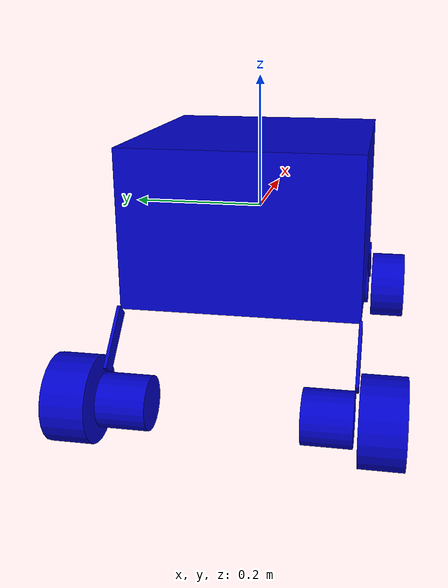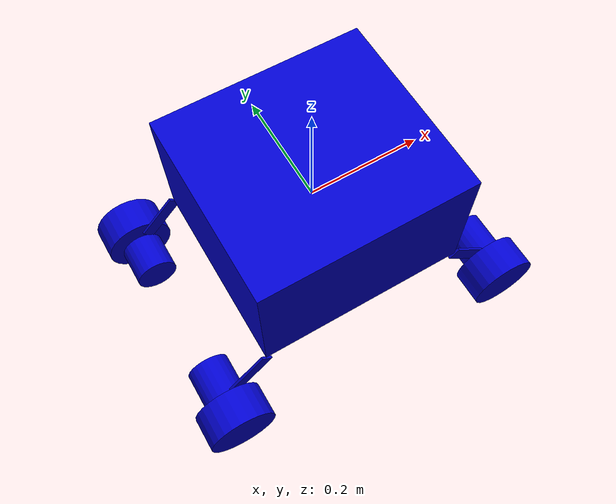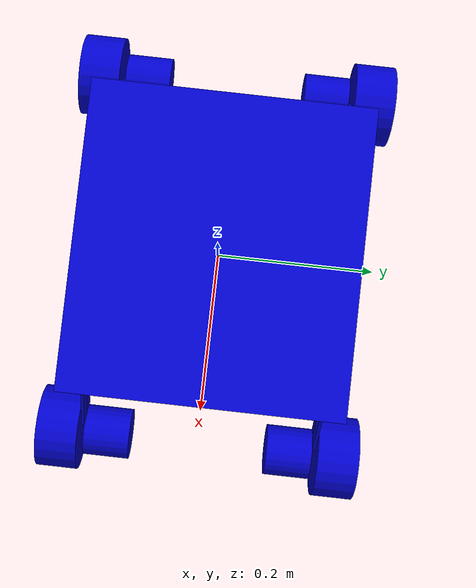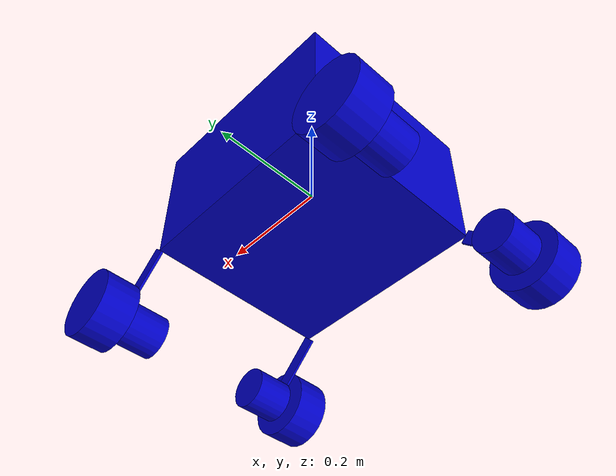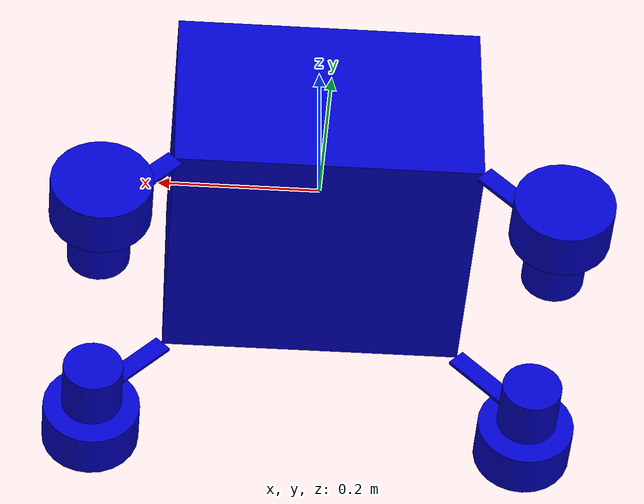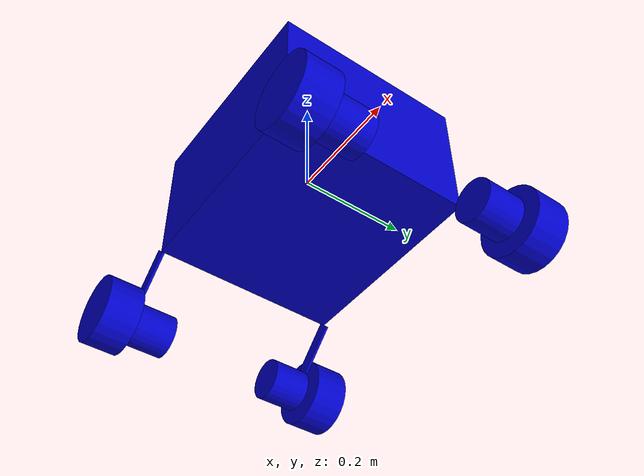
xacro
<?xml version="1.0" ?>
<robot xmlns:xacro="http://ros.org/wiki/xacro" name="r2d2">

    <!--Defining colours to be used in this rover links for primitives-->
    <material name="Black">
        <color rgba="0.0 0.0 0.0 1.0"/>
    </material>

    <material name="Red">
        <color rgba="0.8 0.0 0.0 1.0"/>
    </material>

    <material name="White">
        <color rgba="1.0 1.0 1.0 1.0"/>
    </material>

    <material name="Blue">
        <color rgba="0.0 0.0 0.8 1.0"/>
    </material>

  <!--Property List-->
  <!--All units in m-kg-s-radians unit system please remember this while developing the inertia matrix and the body dimensions-->

  <!--Constant Values-->
  <xacro:property name="M_PI" value="3.1415926535897931"/>
  <xacro:property name="DEG_TO_RAD" value="0.017453293"/>

  <!-- Main Body Cuboid which is made of black color aluminum dimensions -->
  <xacro:property name="box_length" value="0.37"/>
  <xacro:property name="box_width" value="0.34"/>
  <xacro:property name="box_height" value="0.23"/>
  <xacro:property name="box_mass" value="5"/> <!-- This value is in Kg's -->

  <!-- Cuboid part of the holder which is red color steel connecting the wheels, motors to main body -->
  <xacro:property name="holder_length" value="0.0928"/>
  <xacro:property name="holder_width" value="0.02404"/>
  <xacro:property name="holder_height" value="0.00452"/>
  <xacro:property name="holder_mass" value="0.2"/> <!-- This value is in Kg's -->

  <!-- Wheels (off road) -->

  <xacro:property name="wheel_mass" value="0.05" /> --> <!-- in kg-->
  <xacro:property name="wheel_radius" value="0.06"/>
  <xacro:property name="wheel_height" value="0.06"/>

  <!-- Motor Dimensions with holder2 added to it -->

  <xacro:property name="motor_mass" value="0.2" /> --> <!-- in kg-->
  <xacro:property name="motor_radius" value="0.037"/>
  <xacro:property name="motor_height" value="0.067"/>

  <!-- #################### versions with origin #################### -->
  <xacro:macro name="sphere_inertial_with_origin" params="radius mass x_o y_o z_o r_o p_o yr_o">
    <inertial>
      <mass value="${mass}" />
      <origin rpy="${r_o} ${p_o} ${yr_o}" xyz="${x_o} ${y_o} ${z_o}" />
      <inertia ixx="${0.4 * mass * radius * radius}" ixy="0.0" ixz="0.0"
        iyy="${0.4 * mass * radius * radius}" iyz="0.0"
        izz="${0.4 * mass * radius * radius}" />
    </inertial>
  </xacro:macro>

  <xacro:macro name="cylinder_inertial_with_origin" params="radius length mass x_o y_o z_o r_o p_o yr_o">
    <inertial>
      <mass value="${mass}" />
      <origin rpy="${r_o} ${p_o} ${yr_o}" xyz="${x_o} ${y_o} ${z_o}" />
      <inertia ixx="${0.0833333 * mass * (3 * radius * radius + length * length)}" ixy="0.0" ixz="0.0"
        iyy="${0.0833333 * mass * (3 * radius * radius + length * length)}" iyz="0.0"
        izz="${0.5 * mass * radius * radius}" />
    </inertial>
  </xacro:macro>

  <xacro:macro name="box_inertial_with_origin" params="x y z mass x_o y_o z_o r_o p_o yr_o">
    <inertial>
      <mass value="${mass}" />
      <origin rpy="${r_o} ${p_o} ${yr_o}" xyz="${x_o} ${y_o} ${z_o}" />
      <inertia ixx="${0.0833333 * mass * (y*y + z*z)}" ixy="0.0" ixz="0.0"
        iyy="${0.0833333 * mass * (x*x + z*z)}" iyz="0.0"
        izz="${0.0833333 * mass * (x*x + y*y)}" />
    </inertial>
  </xacro:macro>

  <!--Base Link-->
  <link name="base_link">

        <!--Visual of the Link-->
        <visual>
            <!-- Setting up the origin of the link -->
            <origin rpy="0 0 0" xyz="0 0 0"/>

            <!-- Giving geometry to the link -->
            <geometry>
                <box size=" ${box_length} ${box_width} ${box_height}"/>
            </geometry>

            <!--Giving the material to be used in rviz-->
             <material name="Blue"/>
        </visual>

        <!-- Collision Model of the link -->
        <collision>
            <!-- Origin of the collision model -->
            <!-- Setting up the origin of the link -->
            <origin rpy="0 0 0" xyz="0 0 0"/>

            <!-- Giving geometry to the collision model of the link -->
            <geometry>
                <box size="${box_length} ${box_width} ${box_height}"/>
            </geometry>
        </collision>

        <!-- Inertia of the base_link -->
        <xacro:box_inertial_with_origin x="${box_length}" y="${box_width}" z="${box_height}" mass="5" x_o="0" y_o="0" z_o="0" r_o="0" p_o="0" yr_o="0"/>
  </link>

  <joint name="RR_holder_to_base_link" type="revolute">
      <parent link="base_link"/>
      <child link="rr_holder"/>
      <origin xyz="-0.175 -0.17 -0.125" rpy="0 0 0"/>
      <axis xyz="0 1 0" />
      <limit effort="300" velocity="0.1" lower="0" upper="0.261799" />
  </joint>

   <!--Right Rear holder Link-->
  <link name="rr_holder">

        <!--Visual of the Link-->
        <visual>
            <!-- Setting up the origin of the link -->
            <origin rpy="1.5708 -0.785398 0" xyz="-0.0415 0 -0.024"/>

            <!-- Giving geometry to the link -->
            <geometry>
                <box size="${holder_length} ${holder_width} ${holder_height} "/>
            </geometry>

            <!--Giving the material to be used in rviz-->
             <material name="Blue"/>
        </visual>

        <!-- Collision Model of the link -->
        <collision>
            <!-- Origin of the collision model -->
            <!-- Setting up the origin of the link -->
            <origin rpy="1.5708 -0.785398 0" xyz="-0.0415 0 -0.024"/>

            <!-- Giving geometry to the collision model of the link -->
            <geometry>
                <box size="${holder_length} ${holder_width} ${holder_height }"/>
            </geometry>
        </collision>

        <!-- Inertia of the base_link -->
        <xacro:box_inertial_with_origin x="${holder_length}" y="${holder_width}" z="${holder_height}" mass="0.2" x_o="-0.039" y_o="0" z_o="0" r_o="1.5708" p_o="0" yr_o="0"/>
  </link>

  <joint name="RF_holder_to_base_link" type="revolute">
      <parent link="base_link"/>
      <child link="rf_holder"/>
      <origin xyz="0.175 -0.17 -0.125" rpy="0 0 0"/>
      <axis xyz="0 1 0" />
      <limit effort="300" velocity="0.1" lower="0" upper="-0.261799" />
  </joint>

   <!--Right Forward holder Link-->
  <link name="rf_holder">

        <!--Visual of the Link-->
        <visual>
            <!-- Setting up the origin of the link -->
            <origin rpy="1.5708 0.785398 0" xyz="0.0415 0 -0.024"/>

            <!-- Giving geometry to the link -->
            <geometry>
                <box size="${holder_length} ${holder_width} ${holder_height}"/>
            </geometry>

            <!--Giving the material to be used in rviz-->
             <material name="Blue"/>
        </visual>

        <!-- Collision Model of the link -->
        <collision>
            <!-- Origin of the collision model -->
            <!-- Setting up the origin of the link -->
            <origin rpy="1.5708 0.785398 0" xyz="0.0415 0 -0.024"/>

            <!-- Giving geometry to the collision model of the link -->
            <geometry>
                <box size="${holder_length} ${holder_width} ${holder_height}"/>
            </geometry>
        </collision>

        <!-- Inertia of the base_link -->
        <xacro:box_inertial_with_origin x="${holder_length}" y="${holder_width}" z="${holder_height}" mass="0.2" x_o="0.039" y_o="0" z_o="0" r_o="1.5708" p_o="0" yr_o="0"/>
  </link>

  <joint name="LR_holder_to_base_link" type="revolute">
      <parent link="base_link"/>
      <child link="lr_holder"/>
      <origin xyz="-0.175 0.17 -0.125" rpy="0 0 0"/>
      <axis xyz="0 1 0" />
      <limit effort="300" velocity="0.1" lower="0" upper="0.261799" />
  </joint>

   <!--Right Rear holder Link-->
  <link name="lr_holder">

        <!--Visual of the Link-->
        <visual>
            <!-- Setting up the origin of the link -->
            <origin rpy="1.5708 -0.785398 0" xyz="-0.0415 0 -0.024"/>

            <!-- Giving geometry to the link -->
            <geometry>
                <box size="${holder_length} ${holder_width} ${holder_height} "/>
            </geometry>

            <!--Giving the material to be used in rviz-->
             <material name="Blue"/>
        </visual>0.785398

        <!-- Collision Model of the link -->
        <collision>
            <!-- Origin of the collision model -->
            <!-- Setting up the origin of the link -->
            <origin rpy="1.5708 -0.785398 0" xyz="-0.0415 0 -0.024"/>

            <!-- Giving geometry to the collision model of the link -->
            <geometry>
                <box size="${holder_length} ${holder_width} ${holder_height}"/>
            </geometry>
        </collision>

        <!-- Inertia of the base_link -->
        <xacro:box_inertial_with_origin x="${holder_length}" y="${holder_width}" z="${holder_height}" mass="0.2" x_o="-0.039" y_o="0" z_o="0" r_o="1.5708" p_o="0" yr_o="0"/>
  </link>

  <joint name="LF_holder_to_base_link" type="revolute">
      <parent link="base_link"/>
      <child link="lf_holder"/>
      <origin xyz="0.175 0.17 -0.125" rpy="0 0 0"/>
      <axis xyz="0 1 0" />
      <limit effort="300" velocity="0.1" lower="0" upper="-0.261799" />
  </joint>

   <!--Left Forward holder Link-->
  <link name="lf_holder">

        <!--Visual of the Link-->
        <visual>
            <!-- Setting up the origin of the link -->
            <origin rpy="1.5708 0.785398 0" xyz="0.0415 0 -0.024"/>

            <!-- Giving geometry to the link -->
            <geometry>
                <box size="${holder_length} ${holder_width} ${holder_height}"/>
            </geometry>

            <!--Giving the material to be used in rviz-->
             <material name="Blue"/>
        </visual>

        <!-- Collision Model of the link -->
        <collision>
            <!-- Origin of the collision model -->
            <!-- Setting up the origin of the link -->
            <origin rpy="1.5708 0.785398 0" xyz="0.0415 0 -0.024"/>

            <!-- Giving geometry to the collision model of the link -->
            <geometry>
                <box size="${holder_length} ${holder_width} ${holder_height}"/>
            </geometry>
        </collision>

        <!-- Inertia of the base_link -->
        <xacro:box_inertial_with_origin x="${holder_length}" y="${holder_width}" z="${holder_height}" mass="0.2" x_o="0.039" y_o="0" z_o="0" r_o="1.5708" p_o="0" yr_o="0"/>
  </link>

  <!-- Joint link between
      Parent Link :- rr_holder
      Child Link :- motor_rr

      This joint would be a fixed joint.
   -->
  <joint name="RR_motor_to_holder_link" type="fixed">
      <parent link="rr_holder"/>
      <child link="motor_rr"/>
      <origin xyz="-0.062 0 -0.062" rpy="0 0 0"/>
  </joint>

   <!--Left Forward motor + holder2  Link-->
  <link name="motor_rr">

        <!--Visual of the Link-->
        <visual>
            <!-- Setting up the origin of the link -->
            <origin rpy="1.5708 0 0" xyz="${-motor_radius + 0.005} 0.035 ${-motor_radius + 0.01}"/>

            <!-- Giving geometry to the link -->
            <geometry>
                <cylinder length="${motor_height}" radius="${motor_radius}"/>
            </geometry>

            <!--Giving the material to be used in rviz-->
             <material name="Blue"/>
        </visual>

        <!-- Collision Model of the link -->
        <collision>
            <!-- Origin of the collision model -->
            <!-- Setting up the origin of the link -->
            <origin rpy="1.5708 0 0" xyz="${-motor_radius + 0.005} 0.035 ${-motor_radius + 0.01}"/>

            <!-- Giving geometry to the collision model of the link -->
            <geometry>
                <cylinder length="${motor_height}" radius="${motor_radius}"/>
            </geometry>
        </collision>

        <!-- Inertia of the base_link -->
        <xacro:cylinder_inertial_with_origin radius="${motor_radius}" length="${motor_height}" mass="${motor_mass}" x_o="0" y_o="0" z_o="0" r_o="0" p_o="0" yr_o="0" />
  </link>

<!-- Joint link between
      Parent Link :- rf_holder
      Child Link :- motor_rf

      This joint would be a fixed joint.
   -->
  <joint name="RF_motor_to_holder_link" type="fixed">
      <parent link="rf_holder"/>
      <child link="motor_rf"/>
      <origin xyz="0.062 0 -0.062" rpy="0 0 0"/>
  </joint>

   <!--Right Forward motor + holder2  Link-->
  <link name="motor_rf">

        <!--Visual of the Link-->
        <visual>
            <!-- Setting up the origin of the link -->
            <origin rpy="1.5708 0 0" xyz="${motor_radius - 0.005} 0.035 ${-motor_radius + 0.01}"/>

            <!-- Giving geometry to the link -->
            <geometry>
                <cylinder length="${motor_height}" radius="${motor_radius}"/>
            </geometry>

            <!--Giving the material to be used in rviz-->
             <material name="Blue"/>
        </visual>

        <!-- Collision Model of the link -->
        <collision>
            <!-- Origin of the collision model -->
            <!-- Setting up the origin of the link -->
            <origin rpy="1.5708 0 0" xyz="${motor_radius - 0.005} 0.035 ${-motor_radius + 0.01}"/>

            <!-- Giving geometry to the collision model of the link -->
            <geometry>
                <cylinder length="${motor_height}" radius="${motor_radius}"/>
            </geometry>
        </collision>

        <!-- Inertia of the base_link -->
        <xacro:cylinder_inertial_with_origin radius="${motor_radius}" length="${motor_height}" mass="${motor_mass}" x_o="0" y_o="0" z_o="0" r_o="0" p_o="0" yr_o="0" />
  </link>

  <!-- Joint link between
      Parent Link :- lr_holder
      Child Link :- motor_lf

      This joint would be a fixed joint.
   -->
  <joint name="LR_motor_to_holder_link" type="fixed">
      <parent link="lr_holder"/>
      <child link="motor_lr"/>
      <origin xyz="-0.062 0 -0.062" rpy="0 0 0"/>
  </joint>

   <!--Left Forward motor + holder2  Link-->
  <link name="motor_lr">

        <!--Visual of the Link-->
        <visual>
            <!-- Setting up the origin of the link -->
            <origin rpy="-1.5708 0 0" xyz="${-motor_radius + 0.005} -0.035 ${-motor_radius + 0.01}"/>

            <!-- Giving geometry to the link -->
            <geometry>
                <cylinder length="${motor_height}" radius="${motor_radius}"/>
            </geometry>

            <!--Giving the material to be used in rviz-->
             <material name="Blue"/>
        </visual>

        <!-- Collision Model of the link -->
        <collision>
            <!-- Origin of the collision model -->
            <!-- Setting up the origin of the link -->
            <origin rpy="-1.5708 0 0" xyz="${-motor_radius + 0.005} -0.035 ${-motor_radius + 0.01}"/>

            <!-- Giving geometry to the collision model of the link -->
            <geometry>
                <cylinder length="${motor_height}" radius="${motor_radius}"/>
            </geometry>
        </collision>

        <!-- Inertia of the base_link -->
        <xacro:cylinder_inertial_with_origin radius="${motor_radius}" length="${motor_height}" mass="${motor_mass}" x_o="0" y_o="0" z_o="0" r_o="0" p_o="0" yr_o="0" />
  </link>

 <!-- Joint link between
      Parent Link :- lf_holder
      Child Link :- motor_lf

      This joint would be a fixed joint.
   -->
  <joint name="LF_motor_to_holder_link" type="fixed">
      <parent link="lf_holder"/>
      <child link="motor_lf"/>
      <origin xyz="0.062 0 -0.062" rpy="0 0 0"/>
  </joint>

   <!--Left Forward motor + holder2  Link-->
  <link name="motor_lf">

        <!--Visual of the Link-->
        <visual>
            <!-- Setting up the origin of the link -->
            <origin rpy="-1.5708 0 0" xyz="${motor_radius - 0.005} -0.035 ${-motor_radius + 0.01}"/>

            <!-- Giving geometry to the link -->
            <geometry>
                <cylinder length="${motor_height}" radius="${motor_radius}"/>
            </geometry>

            <!--Giving the material to be used in rviz-->
             <material name="Blue"/>
        </visual>

        <!-- Collision Model of the link -->
        <collision>
            <!-- Origin of the collision model -->
            <!-- Setting up the origin of the link -->
            <origin rpy="-1.5708 0 0" xyz="${motor_radius - 0.005} -0.035 ${-motor_radius + 0.01}"/>

            <!-- Giving geometry to the collision model of the link -->
            <geometry>
                <cylinder length="${motor_height}" radius="${motor_radius}"/>
            </geometry>
        </collision>

        <!-- Inertia of the base_link -->
        <xacro:cylinder_inertial_with_origin radius="${motor_radius}" length="${motor_height}" mass="${motor_mass}" x_o="0" y_o="0" z_o="0" r_o="0" p_o="0" yr_o="0" />
  </link>

<!-- Joint link between
      Parent Link :- motor_rr
      Child Link :- rr_wheel

      This joint would be a continuous joint.
   -->

  <joint name="RR_motor_to_wheel" type="continuous">
      <parent link="motor_rr"/>
      <child link="rr_wheel"/>
      <origin xyz="${-motor_radius + 0.005} ${-(wheel_height/2) - 0.005} ${-motor_radius + 0.01}" rpy="1.5708 0 0"/>
      <axis xyz="0 0 1" />
      <limit effort="100" velocity="100"/>
      <joint_properties damping="0.0" friction="0.0"/>
  </joint>

  <!--Left Forward motor + holder2  Link-->
  <link name="rr_wheel">

        <!--Visual of the Link-->
        <visual>
            <!-- Setting up the origin of the link -->
            <origin rpy="0 0 0" xyz="0 0 0"/>

            <!-- Giving geometry to the link -->
            <geometry>
                <cylinder length="${wheel_height}" radius="${wheel_radius}"/>
            </geometry>

            <!--Giving the material to be used in rviz-->
             <material name="Blue"/>
        </visual>

        <!-- Collision Model of the link -->
        <collision>
            <!-- Origin of the collision model -->
            <!-- Setting up the origin of the link -->
            <origin rpy="0 0 0" xyz="0 0 0"/>

            <!-- Giving geometry to the collision model of the link -->
            <geometry>
                <cylinder length="${wheel_height}" radius="${wheel_radius}"/>
            </geometry>
        </collision>

        <!-- Inertia of the base_link -->
        <xacro:cylinder_inertial_with_origin radius="${wheel_radius}" length="${wheel_height}" mass="${wheel_mass}" x_o="0" y_o="0" z_o="0" r_o="0" p_o="0" yr_o="0" />
  </link>

  <!-- Joint link between
      Parent Link :- motor_rf
      Child Link :- rf_wheel

      This joint would be a continuous joint.
   -->

  <joint name="RF_motor_to_wheel" type="continuous">
      <parent link="motor_rf"/>
      <child link="rf_wheel"/>
      <origin xyz="${motor_radius - 0.005} ${-(wheel_height/2) - 0.005} ${-motor_radius + 0.01}" rpy="1.5708 0 0"/>
      <axis xyz="0 0 1" />
      <limit effort="100" velocity="100"/>
      <joint_properties damping="0.0" friction="0.0"/>
  </joint>

  <!--Left Forward motor + holder2  Link-->
  <link name="rf_wheel">

        <!--Visual of the Link-->
        <visual>
            <!-- Setting up the origin of the link -->
            <origin rpy="0 0 0" xyz="0 0 0"/>

            <!-- Giving geometry to the link -->
            <geometry>
                <cylinder length="${wheel_height}" radius="${wheel_radius}"/>
            </geometry>

            <!--Giving the material to be used in rviz-->
             <material name="Blue"/>
        </visual>

        <!-- Collision Model of the link -->
        <collision>
            <!-- Origin of the collision model -->
            <!-- Setting up the origin of the link -->
           <origin rpy="0 0 0" xyz="0 0 0"/>

            <!-- Giving geometry to the collision model of the link -->
            <geometry>
                <cylinder length="${wheel_height}" radius="${wheel_radius}"/>
            </geometry>
        </collision>

        <!-- Inertia of the base_link -->
        <xacro:cylinder_inertial_with_origin radius="${wheel_radius}" length="${wheel_height}" mass="${wheel_mass}" x_o="0" y_o="0" z_o="0" r_o="0" p_o="0" yr_o="0" />
  </link>

   <!-- Joint link between
      Parent Link :- motor_lr
      Child Link :- lr_wheel

      This joint would be a continuous joint.
   -->

  <joint name="LR_motor_to_wheel" type="continuous">
      <parent link="motor_lr"/>
      <child link="lr_wheel"/>
      <origin xyz="${-motor_radius + 0.005} ${(wheel_height/2) + 0.005} ${-motor_radius + 0.01}" rpy="-1.5708 0 0"/>
      <axis xyz="0 0 1" />
      <limit effort="100" velocity="100"/>
      <joint_properties damping="0.0" friction="0.0"/>
  </joint>

  <!--Left Forward motor + holder2  Link-->
  <link name="lr_wheel">

        <!--Visual of the Link-->
        <visual>
            <!-- Setting up the origin of the link -->
            <origin rpy="0 0 0" xyz="0 0 0"/>

            <!-- Giving geometry to the link -->
            <geometry>
                <cylinder length="${wheel_height}" radius="${wheel_radius}"/>
            </geometry>

            <!--Giving the material to be used in rviz-->
             <material name="Blue"/>
        </visual>

        <!-- Collision Model of the link -->
        <collision>
            <!-- Origin of the collision model -->
            <!-- Setting up the origin of the link -->
            <origin rpy="0 0 0" xyz="0 0 0"/>

            <!-- Giving geometry to the collision model of the link -->
            <geometry>
                <cylinder length="${wheel_height}" radius="${wheel_radius}"/>
            </geometry>
        </collision>

        <!-- Inertia of the base_link -->
        <xacro:cylinder_inertial_with_origin radius="${wheel_radius}" length="${wheel_height}" mass="${wheel_mass}" x_o="0" y_o="0" z_o="0" r_o="0" p_o="0" yr_o="0" />
  </link>

<!-- Joint link between
      Parent Link :- motor_lf
      Child Link :- lf_wheel

      This joint would be a continuous joint.
   -->

  <joint name="LF_motor_to_wheel" type="continuous">
      <parent link="motor_lf"/>
      <child link="lf_wheel"/>
      <origin xyz="${motor_radius - 0.005} ${(wheel_height/2) + 0.005} ${-motor_radius + 0.01}" rpy="-1.5708 0 0"/>
      <axis xyz="0 0 1" />
      <limit effort="100" velocity="100"/>
      <joint_properties damping="0.0" friction="0.0"/>
  </joint>

  <!--Left Forward motor + holder2  Link-->
  <link name="lf_wheel">

        <!--Visual of the Link-->
        <visual>
            <!-- Setting up the origin of the link -->
            <origin rpy="0 0 0" xyz="0 0 0"/>

            <!-- Giving geometry to the link -->
            <geometry>
                <cylinder length="${wheel_height}" radius="${wheel_radius}"/>
            </geometry>

            <!--Giving the material to be used in rviz-->
             <material name="Blue"/>
        </visual>

        <!-- Collision Model of the link -->
        <collision>
            <!-- Origin of the collision model -->
            <!-- Setting up the origin of the link -->
            <origin rpy="0 0 0" xyz="0 0 0"/>

            <!-- Giving geometry to the collision model of the link -->
            <geometry>
                <cylinder length="${wheel_height}" radius="${wheel_radius}"/>
            </geometry>
        </collision>

        <!-- Inertia of the base_link -->
        <xacro:cylinder_inertial_with_origin radius="${wheel_radius}" length="${wheel_height}" mass="${wheel_mass}" x_o="0" y_o="0" z_o="0" r_o="0" p_o="0" yr_o="0" />
  </link>

</robot>
